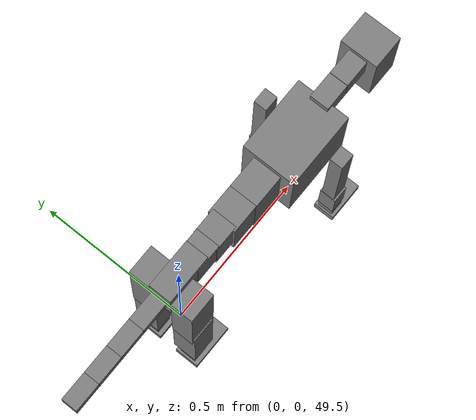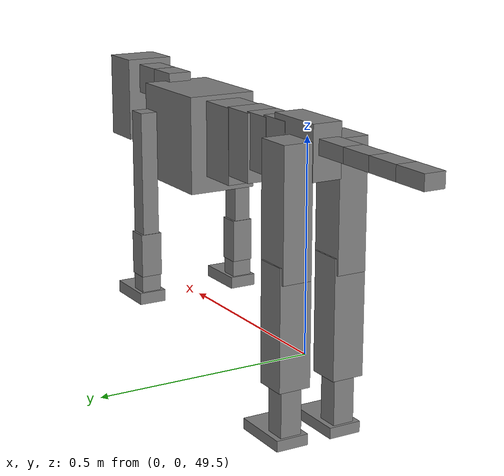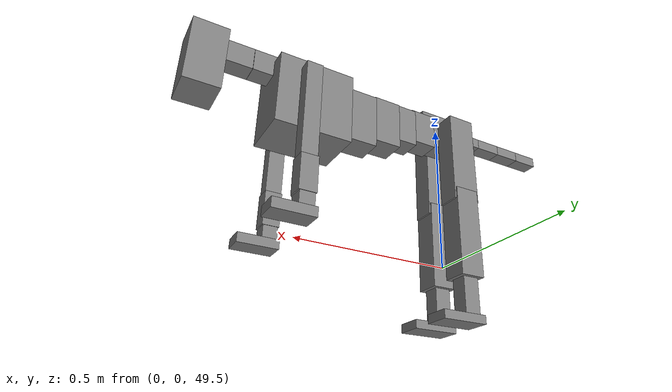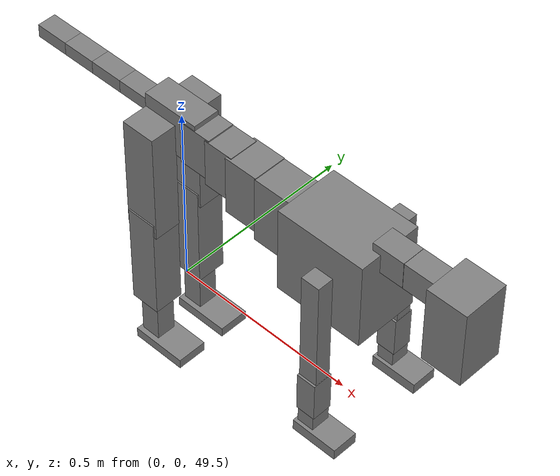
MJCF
<mujoco model="dog">

    <default>
        <joint armature="0.02" stiffness="1" damping="0.2" limited="true"/>
        <geom condim="3" friction="1 0.05 0.05" margin="0.01"/>
        <motor ctrllimited="true" ctrlrange="-1.0 1.0" forcelimited="true" gear="50"/>
    </default>

    <compiler inertiafromgeom="true" angle="radian"/>

    <option timestep="0.016" iterations="50" tolerance="1e-10" solver="Newton" jacobian="dense" cone="pyramidal"/>

    <size nconmax="20000" njmax="60000" nstack="5000000"/>
    <visual>
        <map force="0.1" zfar="30"/>
        <rgba haze="0.15 0.25 0.35 1"/>
        <quality shadowsize="2048"/>
        <global offwidth="800" offheight="800"/>
    </visual>

    <asset>
        <texture type="skybox" builtin="gradient" rgb1="0.3 0.5 0.7" rgb2="0 0 0" width="512" height="512"/>
        <texture name="texplane" type="2d" builtin="checker" rgb1=".2 .3 .4" rgb2=".1 0.15 0.2" width="512" height="512"
                 mark="cross" markrgb=".8 .8 .8"/>
        <texture name="texgeom" type="cube" builtin="flat" mark="cross" width="127" height="1278" rgb1="0.8 0.6 0.4"
                 rgb2="0.8 0.6 0.4" markrgb="1 1 1" random="0.01"/>

        <material name="matplane" reflectance="0.3" texture="texplane" texrepeat="1 1" texuniform="true"/>
        <material name="matgeom" texture="texgeom" texuniform="true" rgba="0.8 0.6 .4 1"/>
    </asset>

    <worldbody>
        <geom name="floor" pos="0 0 0" size="0 0 .25" type="plane" material="matplane" condim="3"/>

        <light directional="false" diffuse=".2 .2 .2" specular="0 0 0" pos="0 0 5" dir="0 0 -1" castshadow="false"/>
        <light mode="targetbodycom" target="torso" directional="false" diffuse=".8 .8 .8" specular="0.3 0.3 0.3"
               pos="0 0 4.0" dir="0 0 -1"/>

        <body name="root" pos="0 0 50">
            <freejoint name="root_1"/>
            <geom type="box" pos="0 0 -0.02" size="0.0774  0.0358  0.063" density="2030"/>

            <body name="spine1" pos="0.054 0 0">
                <joint name="spine1_y" axis="0 1 0" range="0 0.7" limited="true"/>
                <geom type="box" pos="0.02375 0 -0.03" size="0.04375  0.0375  0.05985" density="2030"/>

                <body name="spine2" pos="0.0612 0 0">
                    <joint name="spine2_y" axis="0 1 0" range="-0.15 0.15" limited="true"/>
                    <geom type="box" pos="0.03555  0  -0.04" size="0.04055  0.039  0.06615" density="2030"/>

                    <body name="spine3" pos="0.0730 0 0">
                        <joint name="spine3_y" axis="0 1 0" range="-0.15 0.15" limited="true"/>
                        <geom type="box" pos="0.03555  0  -0.057" size="0.04555  0.0445  0.081" density="2030"/>

                        <body name="spine4" pos="0.0780 0 0">
                            <joint name="spine4_y" axis="0 1 0" range="-0.15 0.15" limited="true"/>
                            <geom type="box" pos="0.05265  0  -0.07" size="0.05265  0.045  0.09135" density="2030"/>

                            <body name="torso" pos="0.1082 0 0">
                                <joint name="torso_y" axis="0 1 0" range="-0.15 0.15" limited="true"/>
                                <geom type="box" pos="0.11925  0  -0.085" size="0.11925  0.085  0.11745"
                                      density="2030"/>

                                <body name="neck1" pos="0.2160  0   0.0180">
                                    <joint name="neck1_y" axis="0 1 0" range="-1.2  -1" limited="true"/>
                                    <geom type="box" pos="0.0423  0  0" size="0.0423  0.03  0.036" density="2325"/>

                                    <body name="neck2" pos="0.0853  0  0">
                                        <joint name="neck2_y" axis="0 1 0" range="0.1  0" limited="true"/>
                                        <geom type="box" pos="0.0423  0  0" size="0.0423  0.03  0.036" density="2325"/>

                                        <body name="head" pos="0.0853  0  0">
                                            <joint name="head_y" axis="0 1 0" range="-0.3  -0.2" limited="true"/>
                                            <geom type="box" pos="0.0531  0  -0.055" size="0.0531  0.06  0.1044"
                                                  density="4030"/>

                                        </body>
                                    </body>
                                </body>

                                <body name="front_shoulder" pos="0.156  0   -0.0480">
                                    <joint name="front_shoulder_y" axis="0 1 0" range="-1 1.5" limited="true"/>
                                    <geom type="box" pos="0 0.13 -0.1388" size="0.0245  0.0209  0.1654" density="1158"/>
                                    <geom type="box" pos="0 -0.13 -0.1388" size="0.0245  0.0209  0.1654"
                                          density="1158"/>

                                    <body name="front_elbow" pos="0  0  -0.2776">
                                        <joint name="front_elbow_y" axis="0 1 0" range="-2 0" limited="true"/>
                                        <geom type="box" pos="0 0.13 -0.0538" size="0.0258  0.0264  0.0538"
                                              density="1081"/>
                                        <geom type="box" pos="0 -0.13 -0.0538" size="0.0258  0.0264  0.0538"
                                              density="1081"/>

                                        <body name="front_wrist" pos="0  0  -0.1075">
                                            <joint name="front_wrist_y" axis="0 1 0" range="-0.2 0" limited="true"/>
                                            <geom type="box" pos="0 0.13 -0.0281" size="0.0224  0.0249  0.0413"
                                                  density="1664"/>
                                            <geom type="box" pos="0 -0.13 -0.0281" size="0.0224  0.0249  0.0413"
                                                  density="1664"/>

                                            <body name="front_finger_end" pos="0  0  -0.0562">
                                                <joint name="front_finger_y" axis="0 1 0" range="-0.4 1"
                                                       limited="true"/>
                                                <geom type="box" pos="0.0340  0.13  0.0003"
                                                      size="0.0622  0.0340  0.0147" density="1515"/>
                                                <geom type="box" pos="0.0340  -0.13  0.0003"
                                                      size="0.0622  0.0340  0.0147" density="1515"/>

                                            </body>

                                        </body>
                                    </body>
                                </body>

                            </body>
                        </body>
                    </body>
                </body>
            </body>

            <body name="back_hip" pos="-0.03 0 -0.018">
                <joint name="back_hip_y" axis="0 1 0" range="-1.5 0.3" limited="true"/>
                <geom type="box" pos="0 0.07 -0.1300" size="0.0455  0.0357  0.1528" density="1154"/>
                <geom type="box" pos="0 -0.07 -0.1300" size="0.0455  0.0357  0.1528" density="1154"/>

                <body name="back_knee" pos="0  0  -0.2600">
                    <joint name="back_knee_y" axis="0 1 0" range="0 2.8" limited="true"/>
                    <geom type="box" pos="0 0.07 -0.1276" size="0.0399  0.0393  0.1432" density="1227"/>
                    <geom type="box" pos="0 -0.07 -0.1276" size="0.0399  0.0393  0.1432" density="1227"/>

                    <body name="back_ankle" pos="0  0  -0.2553">
                        <joint name="back_ankle_y" axis="0 1 0" range="-2.2 0" limited="true"/>
                        <geom type="box" pos="0 0.07 -0.0720" size="0.0262  0.0262  0.0833" density="1284"/>
                        <geom type="box" pos="0 -0.07 -0.0720" size="0.0262  0.0262  0.0833" density="1284"/>

                        <body name="back_toe_end" pos="0  0  -0.1441">
                            <joint name="back_toe_y" axis="0 1 0" range="-0.4 1" limited="true"/>
                            <geom type="box" pos="0.0401  0.07  0.0018" size="0.0736  0.0401  0.0132" density="1515"/>
                            <geom type="box" pos="0.0401  -0.07  0.0018" size="0.0736  0.0401  0.0132" density="1515"/>

                        </body>
                    </body>
                </body>
            </body>

            <body name="tail1" pos="-0.074 0 -0.006">
                <joint name="tail1_y" axis="0 1 0" range="-0.2 0.2" limited="true"/>
                <geom type="box" pos="-0.0536  0  0" size="0.045  0.025  0.0175" density="1587"/>

                <body name="tail2" pos="-0.09 0 0">
                    <joint name="tail2_y" axis="0 1 0" range="-0.2 0.2" limited="true"/>
                    <geom type="box" pos="-0.0536  0  0" size="0.045  0.025  0.0175" density="1587"/>

                    <body name="tail3" pos="-0.09 0 0">
                        <joint name="tail3_y" axis="0 1 0" range="-0.2 0.2" limited="true"/>
                        <geom type="box" pos="-0.0536  0  0" size="0.045  0.025  0.0175" density="1587"/>

                        <body name="tail4" pos="-0.09 0 0">
                            <joint name="tail4_y" axis="0 1 0" range="-0.2 0.2" limited="true"/>
                            <geom type="box" pos="-0.0536  0  0" size="0.045  0.025  0.0175" density="1587"/>

                        </body>
                    </body>
                </body>
            </body>
        </body>
    </worldbody>

    <actuator>
        <motor joint="spine1_y" forcerange="-150 150     "/>
        <motor joint="spine2_y" forcerange="-150 150     "/>
        <motor joint="spine3_y" forcerange="-150 150     "/>
        <motor joint="spine4_y" forcerange="-150 150     "/>
        <motor joint="torso_y" forcerange="-150 150     "/>
        <motor joint="neck1_y" forcerange="-100 100       "/>
        <motor joint="neck2_y" forcerange="-100 100       "/>
        <motor joint="head_y" forcerange="-150 150       "/>
        <motor joint="front_shoulder_y" forcerange="-130.11 109.24"/>
        <motor joint="front_elbow_y" forcerange="-179.89 112.01"/>
        <motor joint="front_wrist_y" forcerange="-98.02 100.87"/>
        <motor joint="front_finger_y" forcerange="-47.35 93.72"/>
        <motor joint="back_hip_y" forcerange="-370.74 304.63"/>
        <motor joint="back_knee_y" forcerange="-397.05 374.73"/>
        <motor joint="back_angle_y" forcerange="-109.32 209.79"/>
        <motor joint="back_toe_y" forcerange="-123.50 117.52"/>
        <motor joint="tail1_y" forcerange="-50 50     "/>
        <motor joint="tail2_y" forcerange="-50 50     "/>
        <motor joint="tail3_y" forcerange="-50 50     "/>
        <motor joint="tail4_y" forcerange="-50 50     "/>
    </actuator>
</mujoco>
